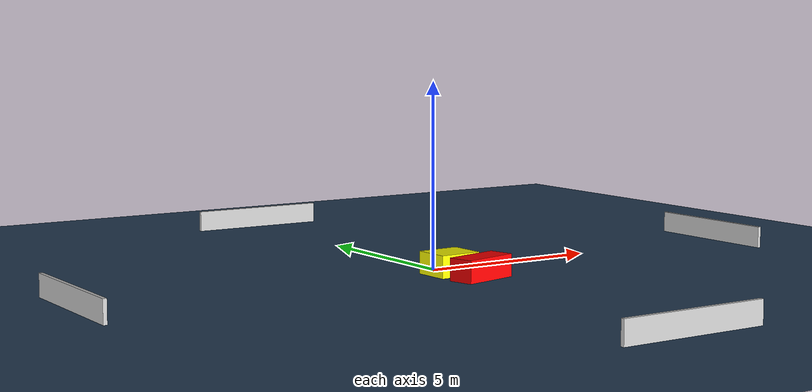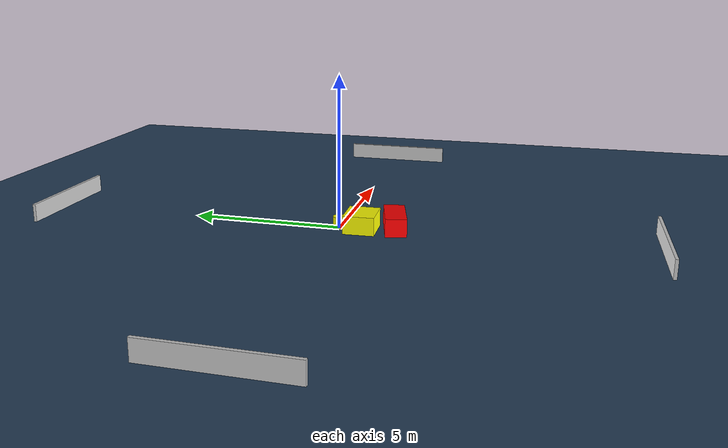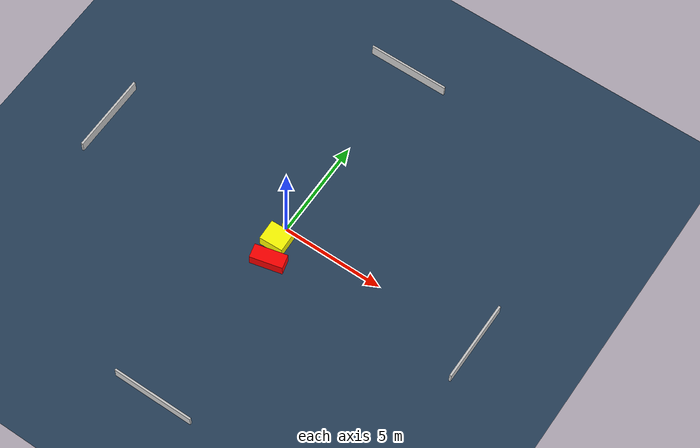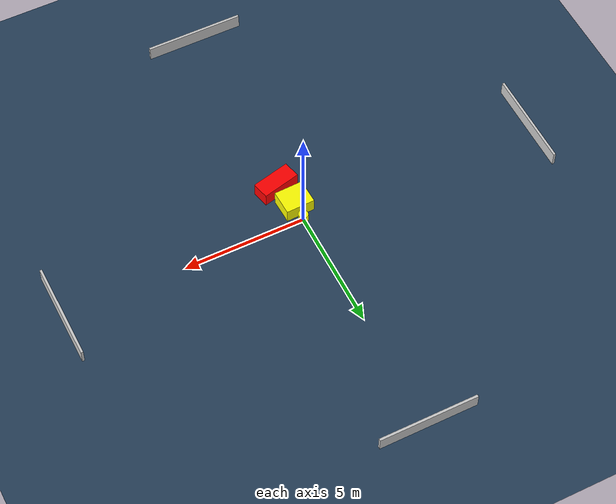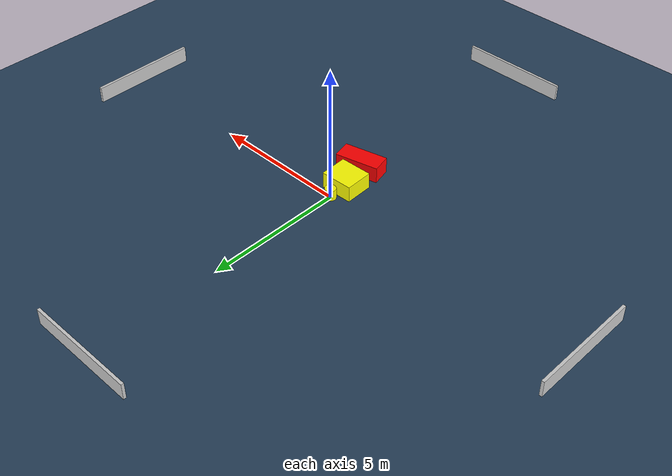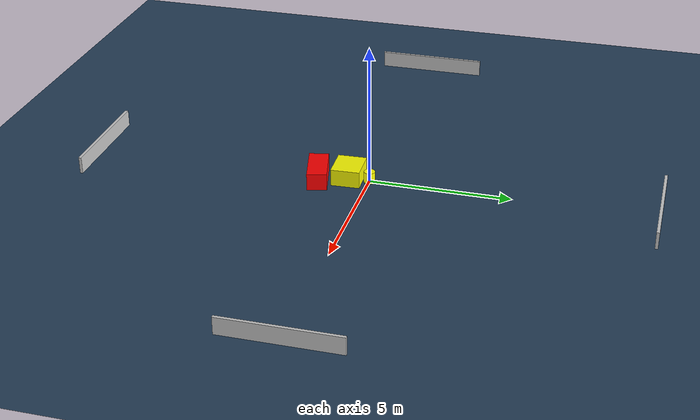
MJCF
<?xml version="1.0" ?>
<mujoco model="generated_environment">
  <option timestep="0.01" integrator="RK4" cone="elliptic"/>
  <default>
    <geom density="1"/>
  </default>
  <asset>
    <texture builtin="gradient" height="3072" name="skybox" rgb1="0.3 0.5 0.7" rgb2="0 0 0" type="skybox" width="512"/>
    <texture builtin="checker" height="300" name="groundplane" rgb1="0.2 0.3 0.4" rgb2="0.1 0.2 0.3" type="2d" width="300"/>
    <material name="groundplane" reflectance="0.2" texrepeat="5 5" texture="groundplane"/>
  </asset>
  <worldbody>
    <light dir="0 0 -1" directional="true" pos="0 0 1.5"/>
    <geom condim="3" friction="0.5 0.005 0.001" material="groundplane" name="floor" pos="0 0 0" size="0 0 0.05" type="plane"/>
    <body name="walls">
      <geom name="wall_1" condim="4" pos="-10.0 0.0 0.3" rgba="0.800000011920929 0.800000011920929 0.800000011920929 1.0" size="0.05 2.0 0.3" type="box"/>
      <geom name="wall_2" condim="4" pos="10.0 0.0 0.3" rgba="0.800000011920929 0.800000011920929 0.800000011920929 1.0" size="0.05 2.0 0.3" type="box"/>
      <geom name="wall_3" condim="4" pos="0.0 -10.0 0.3" rgba="0.800000011920929 0.800000011920929 0.800000011920929 1.0" size="2.0 0.05 0.3" type="box"/>
      <geom name="wall_4" condim="4" pos="0.0 10.0 0.3" rgba="0.800000011920929 0.800000011920929 0.800000011920929 1.0" size="2.0 0.05 0.3" type="box"/>
    </body>
    <body name="robot">
      <joint name="joint_x" type="slide" pos="0 0 0" axis="1 0 0"/>
      <joint name="joint_y" type="slide" pos="0 0 0" axis="0 1 0"/>
      <geom name="robot" type="cylinder" pos="0.0 0.0 0.2" size="0.2 0.2 0.0" mass="5.0" friction="1.0 0.005 0.0001" condim="4" rgba="1.0 1.0 0.0 1.0"/>
    </body>
    <body name="obstacle_1_movable">
      <geom name="obstacle_1_movable" condim="4" pos="0.0035742178010153797 -0.7500124632253892 0.3" euler="0 0 272.03380637912755" friction="0.0 0.005 0.001" rgba="1.0 1.0 0.0 1.0" size="0.5091784099174127 0.5866914090937851 0.3" type="box" mass="0.1"/>
      <joint type="free"/>
    </body>
    <body name="obstacle_2_static">
      <geom name="obstacle_2_static" condim="4" pos="0.28546119226688754 -1.7886806499571177 0.3" euler="0 0 103.54472439084043" friction="0.0 0.005 0.001" rgba="1.0 0.0 0.0 1.0" size="0.3485426318156429 0.7949503030603202 0.3" type="box"/>
    </body>
  </worldbody>
  <actuator>
    <motor name="actuator_x" joint="joint_x" gear="1" ctrlrange="-1 1"/>
    <motor name="actuator_y" joint="joint_y" gear="1" ctrlrange="-1 1"/>
  </actuator>
</mujoco>
